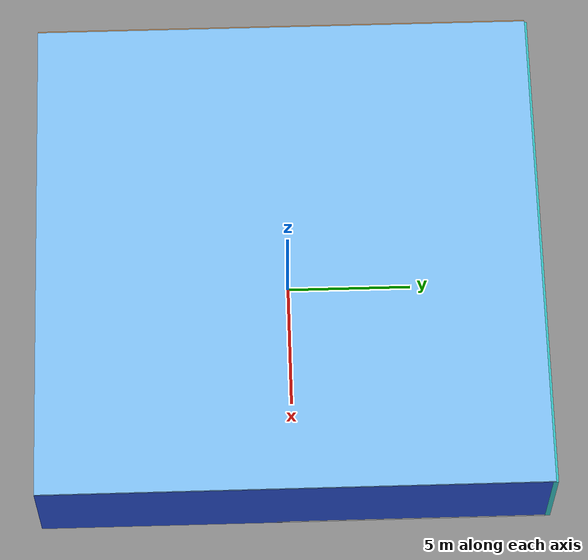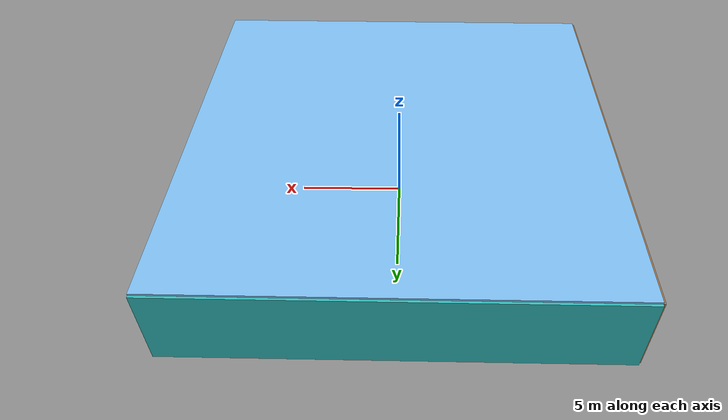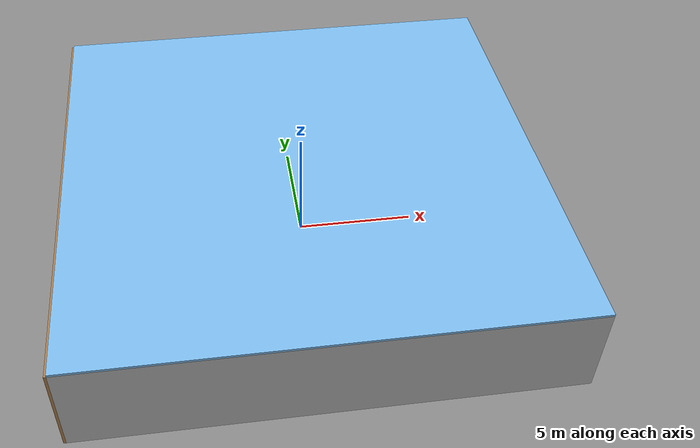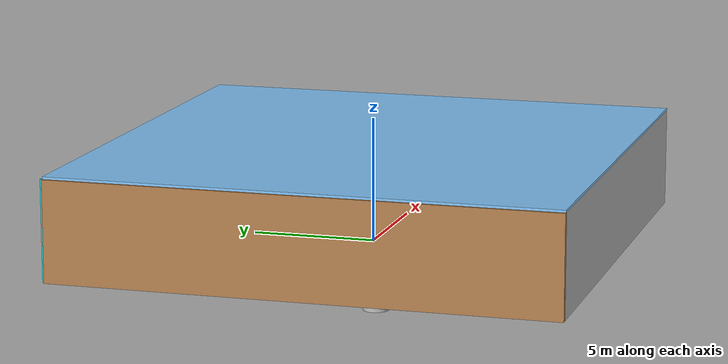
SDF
<sdf version="1.4">
 <world name="default">
  <physics type="ode">
   <max_step_size>0.001</max_step_size>
   <real_time_factor>1</real_time_factor>
   <real_time_update_rate>1000</real_time_update_rate>
   <gravity>0 0 -9.8</gravity>
  </physics>
  <scene><ambient>0.4 0.4 0.4 1</ambient><background>0.7 0.7 0.7 1</background><shadows>1</shadows></scene>
  <model name="Surrounding">
   <static>1</static>
   <link name="Ceiling">
    <collision name="Ceiling_Collision"><geometry><box><size>20 20 0.1</size></box></geometry></collision>
    <visual name="Ceiling_Visual">
     <geometry><box><size>20 20 0.1</size></box></geometry>
     <material>
      <script><uri>file://media/materials/scripts/gazebo.material</uri><name>Gazebo/SkyBlue</name></script>
     </material>
    </visual>
    <pose>0 0 4.05 0 0 0</pose>
   </link>
   <link name="Wall_South">
    <collision name="Wall_South_Collision">
     <geometry><box><size>20 0 4</size></box></geometry>
     <pose>0 0 2 0 -0 0</pose>
    </collision>
    <visual name="Wall_South_Visual">
     <pose>0 0 2 0 -0 0</pose>
     <geometry><box><size>20 0 4</size></box></geometry>
     <material>
      <script><uri>file://media/materials/scripts/gazebo.material</uri><name>Gazebo/CloudySky</name></script>
     </material>
    </visual>
    <velocity_decay><linear>0</linear><angular>0</angular></velocity_decay>
    <pose>0 -10 0 0 -0 0</pose>
   </link>
   <link name="Wall_East">
    <collision name="Wall_21_Collision">
     <geometry><box><size>20 0 4</size></box></geometry>
     <pose>0 0 2 0 -0 0</pose>
    </collision>
    <visual name="Wall_21_Visual">
     <pose>0 0 2 0 -0 0</pose>
     <geometry><box><size>20 0 4</size></box></geometry>
     <material>
      <script><uri>file://media/materials/scripts/gazebo.material</uri><name>Gazebo/BlueLaser</name></script>
     </material>
    </visual>
    <velocity_decay><linear>0</linear><angular>0</angular></velocity_decay>
    <pose>10 0 0 0 -0 1.5708</pose>
   </link>
   <link name="Wall_North">
    <collision name="Wall_22_Collision">
     <geometry><box><size>20 0.2 4</size></box></geometry>
     <pose>0 0 2 0 -0 0</pose>
    </collision>
    <visual name="Wall_22_Visual">
     <pose>0 0 2 0 -0 0</pose>
     <geometry><box><size>20 0.2 4</size></box></geometry>
     <material>
      <script><uri>file://media/materials/scripts/gazebo.material</uri><name>Gazebo/Turquoise</name></script>
     </material>
    </visual>
    <velocity_decay><linear>0</linear><angular>0</angular></velocity_decay>
    <pose>0 10 0 0 -0 0</pose>
   </link>
   <link name="Wall_West">
    <collision name="Wall_23_Collision">
     <geometry><box><size>20 0.2 4</size></box></geometry>
     <pose>0 0 2 0 -0 0</pose>
    </collision>
    <visual name="Wall_23_Visual">
     <pose>0 0 2 0 -0 0</pose>
     <geometry><box><size>20 0.2 4</size></box></geometry>
     <material>
      <script><uri>file://media/materials/scripts/gazebo.material</uri><name>Gazebo/WoodFloor</name></script>
     </material>
    </visual>
    <velocity_decay><linear>0</linear><angular>0</angular></velocity_decay>
    <pose>-10 0 0 0 0 -1.5708</pose>
   </link>
   <link name="Ground_link">
    <collision name="collision">
     <pose>0 0 .05 0 -0 0</pose>
     <geometry><box><size>20 20 0.1</size></box></geometry>
    </collision>
    <visual name="visual">
     <pose>0 0 .05 0 -0 0</pose>
     <geometry><box><size>20 20 0.1</size></box></geometry>
     <material>
      <script><uri>file://media/materials/scripts/gazebo.material</uri><name>Gazebo/WhiteGlow</name></script>
     </material>
    </visual>
   </link>
   <static>1</static>
  </model>
  <spherical_coordinates>
   <surface_model>EARTH_WGS84</surface_model>
   <latitude_deg>0</latitude_deg>
   <longitude_deg>0</longitude_deg>
   <elevation>0</elevation>
   <heading_deg>0</heading_deg>
  </spherical_coordinates>
  <light name="lightball_0" type="diffuse">
   <diffuse>0.8 0.8 0.8 1</diffuse>
   <specular>0.2 0.2 0.2 1</specular>
   <attenuation>
    <range>100</range>
    <constant>0.7</constant>
    <linear>0.01</linear>
    <quadratic>0.001</quadratic>
   </attenuation>
   <direction>-0.5 0.1 -0.9</direction>
   <pose>-6.14041299112 0.0730616049856 1.8761640479 0 0 0</pose>
  </light>
  <light name="lightball_1" type="diffuse">
   <diffuse>0.8 0.8 0.8 1</diffuse>
   <specular>0.2 0.2 0.2 1</specular>
   <attenuation>
    <range>100</range>
    <constant>0.7</constant>
    <linear>0.01</linear>
    <quadratic>0.001</quadratic>
   </attenuation>
   <direction>-0.5 0.1 -0.9</direction>
   <pose>-0.70759736905 9.10271787412 1.04476359037 0 0 0</pose>
  </light>
  <light name="lightball_2" type="diffuse">
   <diffuse>0.8 0.8 0.8 1</diffuse>
   <specular>0.2 0.2 0.2 1</specular>
   <attenuation>
    <range>100</range>
    <constant>0.7</constant>
    <linear>0.01</linear>
    <quadratic>0.001</quadratic>
   </attenuation>
   <direction>-0.5 0.1 -0.9</direction>
   <pose>-9.9056117393 1.82538059724 2.33331617177 0 0 0</pose>
  </light>
  <light name="lightball_3" type="diffuse">
   <diffuse>0.8 0.8 0.8 1</diffuse>
   <specular>0.2 0.2 0.2 1</specular>
   <attenuation>
    <range>100</range>
    <constant>0.7</constant>
    <linear>0.01</linear>
    <quadratic>0.001</quadratic>
   </attenuation>
   <direction>-0.5 0.1 -0.9</direction>
   <pose>0.886389021084 8.32699373125 1.49150439935 0 0 0</pose>
  </light>
  <light name="lightball_4" type="diffuse">
   <diffuse>0.8 0.8 0.8 1</diffuse>
   <specular>0.2 0.2 0.2 1</specular>
   <attenuation>
    <range>100</range>
    <constant>0.7</constant>
    <linear>0.01</linear>
    <quadratic>0.001</quadratic>
   </attenuation>
   <direction>-0.5 0.1 -0.9</direction>
   <pose>-3.49703199391 -3.64627440026 1.87526668157 0 0 0</pose>
  </light>
  <light name="lightball_5" type="diffuse">
   <diffuse>0.8 0.8 0.8 1</diffuse>
   <specular>0.2 0.2 0.2 1</specular>
   <attenuation>
    <range>100</range>
    <constant>0.7</constant>
    <linear>0.01</linear>
    <quadratic>0.001</quadratic>
   </attenuation>
   <direction>-0.5 0.1 -0.9</direction>
   <pose>8.7155376112 -2.96371112287 0.593457155805 0 0 0</pose>
  </light>
  <light name="lightball_6" type="diffuse">
   <diffuse>0.8 0.8 0.8 1</diffuse>
   <specular>0.2 0.2 0.2 1</specular>
   <attenuation>
    <range>100</range>
    <constant>0.7</constant>
    <linear>0.01</linear>
    <quadratic>0.001</quadratic>
   </attenuation>
   <direction>-0.5 0.1 -0.9</direction>
   <pose>6.34352192617 8.90078291289 0.941385379629 0 0 0</pose>
  </light>
  <light name="lightball_7" type="diffuse">
   <diffuse>0.8 0.8 0.8 1</diffuse>
   <specular>0.2 0.2 0.2 1</specular>
   <attenuation>
    <range>100</range>
    <constant>0.7</constant>
    <linear>0.01</linear>
    <quadratic>0.001</quadratic>
   </attenuation>
   <direction>-0.5 0.1 -0.9</direction>
   <pose>0.810162496475 -5.61341404084 3.36453774463 0 0 0</pose>
  </light>
  <light name="lightball_8" type="diffuse">
   <diffuse>0.8 0.8 0.8 1</diffuse>
   <specular>0.2 0.2 0.2 1</specular>
   <attenuation>
    <range>100</range>
    <constant>0.7</constant>
    <linear>0.01</linear>
    <quadratic>0.001</quadratic>
   </attenuation>
   <direction>-0.5 0.1 -0.9</direction>
   <pose>-7.40460533834 5.95062489919 1.43003421367 0 0 0</pose>
  </light>
  <light name="lightball_9" type="diffuse">
   <diffuse>0.8 0.8 0.8 1</diffuse>
   <specular>0.2 0.2 0.2 1</specular>
   <attenuation>
    <range>100</range>
    <constant>0.7</constant>
    <linear>0.01</linear>
    <quadratic>0.001</quadratic>
   </attenuation>
   <direction>-0.5 0.1 -0.9</direction>
   <pose>-4.53297959066 3.5483507671 2.52304197939 0 0 0</pose>
  </light>
  <include>
   <uri>model://textured_shapes</uri>
   <pose>-7.53522158896 -3.76703606264 0 0 0 0.609380999739</pose>
  </include>
  <include><uri>model://cabinet</uri><pose>-6.81294726735 -1.98552981439 0 0 0 1.39792844505</pose></include>
  <include><uri>model://cabinet</uri><pose>-4.9500386969 7.13794174483 0 0 0 3.1305438701</pose></include>
  <include><uri>model://table</uri><pose>4.46144155302 -3.83331220087 0 0 0 0.907388905924</pose></include>
 </world>
</sdf>

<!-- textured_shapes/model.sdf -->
<sdf version="1.6">
  <model name="textured_shapes">
    <pose>0 0 0.5 0 0 0</pose>
    <link name="box">
      <pose>0 -1.5 0 0 0 0</pose>
      <collision name="collision">
        <geometry>
          <box>
            <size>1 1 1</size>
          </box>
        </geometry>
      </collision>
      <visual name="visual">
        <geometry>
          <box>
            <size>1 1 1</size>
          </box>
        </geometry>
        <material>
          <script>
            <uri>model://../model_source/models/textured_shapes/materials/scripts</uri>
            <uri>model://../model_source/models/textured_shapes/materials/textures</uri>
            <name>TexturedShape/Squares</name>
          </script>
        </material>
      </visual>
    </link>
    <link name="sphere">
      <collision name="collision">
        <geometry>
          <sphere>
            <radius>0.5</radius>
          </sphere>
        </geometry>
      </collision>
      <visual name="visual">
        <geometry>
          <sphere>
            <radius>0.5</radius>
          </sphere>
        </geometry>
        <material>
          <script>
            <uri>model://../model_source/models/textured_shapes/materials/scripts</uri>
            <uri>model://../model_source/models/textured_shapes/materials/textures</uri>
            <name>TexturedShape/Squares</name>
          </script>
        </material>
      </visual>
    </link>
    <link name="cylinder">
      <pose>0 1.5 0 0 0 0</pose>
      <collision name="collision">
        <geometry>
          <cylinder>
            <radius>0.5</radius>
            <length>1</length>
          </cylinder>
        </geometry>
      </collision>
      <visual name="visual">
        <geometry>
          <cylinder>
            <radius>0.5</radius>
            <length>1</length>
          </cylinder>
        </geometry>
        <material>
          <script>
            <uri>model://../model_source/models/textured_shapes/materials/scripts</uri>
            <uri>model://../model_source/models/textured_shapes/materials/textures</uri>
            <name>TexturedShape/Squares</name>
          </script>
        </material>
      </visual>
    </link>
  </model>
</sdf>

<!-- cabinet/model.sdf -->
<sdf version="1.5">
  <model name="cabinet">
    <static>true</static>
    <link name="cabinet_bottom_plate">
      <inertial>
        <pose>0 0 -1 0 0 0</pose>
        <inertia>
          <ixx>2.050000</ixx>
          <ixy>0</ixy>
          <ixz>0</ixz>
          <iyy>2.050000</iyy>
          <iyz>0</iyz>
          <izz>2.050000</izz>
        </inertia>
        <mass>25.000000</mass>
      </inertial>
      <collision name="cabinet_bottom_plate_geom">
        <pose>0 0 0.010000 0 0 0</pose>
        <geometry>
          <box>
            <size>0.450000 0.450000 0.020000</size>
          </box>
        </geometry>
      </collision>
      <visual name="cabinet_bottom_plate_geom_visual">
        <pose>0 0 0.010000 0 0 0</pose>
        <geometry>
          <box>
            <size>0.450000 0.450000 0.020000</size>
          </box>
        </geometry>
        <material>
          <script>
            <uri>model://media/materials/scripts/gazebo.material</uri>
            <name>Gazebo/Wood</name>
          </script>
        </material>
      </visual>
      <collision name="cabinet_bottom_plate_geom_cabinet_back_plate">
        <pose>0.235000 0 0.510000 0 0 0</pose>
        <geometry>
          <box>
            <size>0.020000 0.450000 1.020000</size>
          </box>
        </geometry>
      </collision>
      <visual name="cabinet_bottom_plate_geom_cabinet_back_plate_visual">
        <pose>0.235000 0 0.510000 0 0 0</pose>
        <geometry>
          <box>
            <size>0.020000 0.450000 1.020000</size>
          </box>
        </geometry>
        <material>
          <script>
            <uri>model://media/materials/scripts/gazebo.material</uri>
            <name>Gazebo/Wood</name>
          </script>
        </material>
      </visual>
      <collision name="cabinet_bottom_plate_geom_cabinet_left_plate">
        <pose>0 0.235000 0.510000 0 0 0</pose>
        <geometry>
          <box>
            <size>0.450000 0.020000 1.020000</size>
          </box>
        </geometry>
      </collision>
      <visual name="cabinet_bottom_plate_geom_cabinet_left_plate_visual">
        <pose>0 0.235000 0.510000 0 0 0</pose>
        <geometry>
          <box>
            <size>0.450000 0.020000 1.020000</size>
          </box>
        </geometry>
        <material>
          <script>
            <uri>model://media/materials/scripts/gazebo.material</uri>
            <name>Gazebo/Wood</name>
          </script>
        </material>
      </visual>
      <collision name="cabinet_bottom_plate_geom_cabinet_middle_plate">
        <pose>0 0 0.510000 0 0 0</pose>
        <geometry>
          <box>
            <size>0.450000 0.450000 0.020000</size>
          </box>
        </geometry>
      </collision>
      <visual name="cabinet_bottom_plate_geom_cabinet_middle_plate_visual">
        <pose>0 0 0.510000 0 0 0</pose>
        <geometry>
          <box>
            <size>0.450000 0.450000 0.020000</size>
          </box>
        </geometry>
        <material>
          <script>
            <uri>model://media/materials/scripts/gazebo.material</uri>
            <name>Gazebo/Wood</name>
          </script>
        </material>
      </visual>
      <collision name="cabinet_bottom_plate_geom_cabinet_right_plate">
        <pose>0 -0.235000 0.510000 0 0 0</pose>
        <geometry>
          <box>
            <size>0.450000 0.020000 1.020000</size>
          </box>
        </geometry>
      </collision>
      <visual name="cabinet_bottom_plate_geom_cabinet_right_plate_visual">
        <pose>0 -0.235000 0.510000 0 0 0</pose>
        <geometry>
          <box>
            <size>0.450000 0.020000 1.020000</size>
          </box>
        </geometry>
        <material>
          <script>
            <uri>model://media/materials/scripts/gazebo.material</uri>
            <name>Gazebo/Wood</name>
          </script>
        </material>
      </visual>
      <collision name="cabinet_bottom_plate_geom_cabinet_top_plate">
        <pose>0 0 1.010000 0 0 0</pose>
        <geometry>
          <box>
            <size>0.450000 0.450000 0.020000</size>
          </box>
        </geometry>
      </collision>
      <visual name="cabinet_bottom_plate_geom_cabinet_top_plate_visual">
        <pose>0 0 1.010000 0 0 0</pose>
        <geometry>
          <box>
            <size>0.450000 0.450000 0.020000</size>
          </box>
        </geometry>
        <material>
          <script>
            <uri>model://media/materials/scripts/gazebo.material</uri>
            <name>Gazebo/Wood</name>
          </script>
        </material>
      </visual>
    </link>
  </model>
</sdf>

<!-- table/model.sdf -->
<sdf version="1.5">
  <model name="table">
    <static>true</static>
    <link name="link">
      <collision name="surface">
        <pose>0 0 1.0 0 0 0</pose>
        <geometry>
          <box>
            <size>1.5 0.8 0.03</size>
          </box>
        </geometry>
        <surface>
          <friction>
            <ode>
              <mu>0.6</mu>
              <mu2>0.6</mu2>
            </ode>
          </friction>
        </surface>
      </collision>
      <visual name="visual1">
        <pose>0 0 1.0 0 0 0</pose>
        <geometry>
          <box>
            <size>1.5 0.8 0.03</size>
          </box>
        </geometry>
        <material>
          <script>
            <uri>model://media/materials/scripts/gazebo.material</uri>
            <name>Gazebo/Wood</name>
          </script>
        </material>
      </visual>
      <collision name="front_left_leg">
        <pose>0.68 0.38 0.5 0 0 0</pose>
        <geometry>
          <cylinder>
            <radius>0.02</radius>
            <length>1.0</length>
          </cylinder>
        </geometry>
      </collision>
      <visual name="front_left_leg">
        <pose>0.68 0.38 0.5 0 0 0</pose>
        <geometry>
          <cylinder>
            <radius>0.02</radius>
            <length>1.0</length>
          </cylinder>
        </geometry>
        <material>
          <script>
            <uri>model://media/materials/scripts/gazebo.material</uri>
            <name>Gazebo/Grey</name>
          </script>
        </material>
      </visual>
      <collision name="front_right_leg">
        <pose>0.68 -0.38 0.5 0 0 0</pose>
        <geometry>
          <cylinder>
            <radius>0.02</radius>
            <length>1.0</length>
          </cylinder>
        </geometry>
      </collision>
      <visual name="front_right_leg">
        <pose>0.68 -0.38 0.5 0 0 0</pose>
        <geometry>
          <cylinder>
            <radius>0.02</radius>
            <length>1.0</length>
          </cylinder>
        </geometry>
        <material>
          <script>
            <uri>model://media/materials/scripts/gazebo.material</uri>
            <name>Gazebo/Grey</name>
          </script>
        </material>
      </visual>
      <collision name="back_right_leg">
        <pose>-0.68 -0.38 0.5 0 0 0</pose>
        <geometry>
          <cylinder>
            <radius>0.02</radius>
            <length>1.0</length>
          </cylinder>
        </geometry>
      </collision>
      <visual name="back_right_leg">
        <pose>-0.68 -0.38 0.5 0 0 0</pose>
        <geometry>
          <cylinder>
            <radius>0.02</radius>
            <length>1.0</length>
          </cylinder>
        </geometry>
        <material>
          <script>
            <uri>model://media/materials/scripts/gazebo.material</uri>
            <name>Gazebo/Grey</name>
          </script>
        </material>
      </visual>
      <collision name="back_left_leg">
        <pose>-0.68 0.38 0.5 0 0 0</pose>
        <geometry>
          <cylinder>
            <radius>0.02</radius>
            <length>1.0</length>
          </cylinder>
        </geometry>
      </collision>
      <visual name="back_left_leg">
        <pose>-0.68 0.38 0.5 0 0 0</pose>
        <geometry>
          <cylinder>
            <radius>0.02</radius>
            <length>1.0</length>
          </cylinder>
        </geometry>
        <material>
          <script>
            <uri>model://media/materials/scripts/gazebo.material</uri>
            <name>Gazebo/Grey</name>
          </script>
        </material>
      </visual>
    </link>
  </model>
</sdf>
